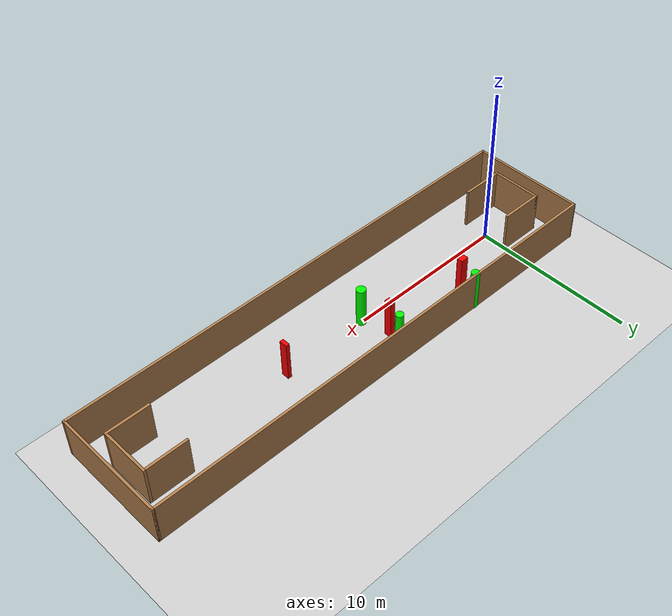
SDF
<sdf version="1.7">
 <world name="default">
  <light name="sun" type="directional">
   <pose>0 0 10 0 -0 0</pose>
   <diffuse>0.8 0.8 0.8 1</diffuse>
   <specular>0.2 0.2 0.2 1</specular>
   <attenuation>
    <range>1000</range>
    <constant>0.9</constant>
    <linear>0.01</linear>
    <quadratic>0.001</quadratic>
   </attenuation>
   <direction>-0.5 0.1 -0.9</direction>
   <spot><inner_angle>0</inner_angle><outer_angle>0</outer_angle><falloff>0</falloff></spot>
  </light>
  <model name="ground_plane">
   <static>1</static>
   <link name="link">
    <collision name="collision">
     <geometry><plane><normal>0 0 1</normal><size>100 100</size></plane></geometry>
     <surface>
      <contact><collide_bitmask>65535</collide_bitmask></contact>
      <friction><ode><mu>100</mu><mu2>50</mu2></ode></friction>
     </surface>
    </collision>
    <visual name="visual">
     <cast_shadows>0</cast_shadows>
     <geometry><plane><normal>0 0 1</normal><size>100 100</size></plane></geometry>
     <material>
      <script><uri>file://media/materials/scripts/gazebo.material</uri><name>Gazebo/Grey</name></script>
     </material>
    </visual>
   </link>
  </model>
  <gravity>0 0 -9.8</gravity>
  <magnetic_field>6e-06 2.3e-05 -4.2e-05</magnetic_field>
  <atmosphere type="adiabatic"/>
  <physics type="ode">
   <max_step_size>0.001</max_step_size>
   <real_time_factor>1</real_time_factor>
   <real_time_update_rate>1000</real_time_update_rate>
  </physics>
  <scene><ambient>0.4 0.4 0.4 1</ambient><background>0.7 0.7 0.7 1</background><shadows>1</shadows></scene>
  <spherical_coordinates>
   <surface_model>EARTH_WGS84</surface_model>
   <latitude_deg>0</latitude_deg>
   <longitude_deg>0</longitude_deg>
   <elevation>0</elevation>
   <heading_deg>0</heading_deg>
  </spherical_coordinates>
  <model name="my_base_walls">
   <link name="Wall_0">
    <collision name="Wall_0_Collision">
     <geometry><box><size>7.15 0.15 2.5</size></box></geometry>
     <pose>0 0 1.25 0 -0 0</pose>
    </collision>
    <visual name="Wall_0_Visual">
     <pose>0 0 1.25 0 -0 0</pose>
     <geometry><box><size>7.15 0.15 2.5</size></box></geometry>
     <material>
      <script><uri>file://media/materials/scripts/gazebo.material</uri><name>Gazebo/Wood</name></script>
      <ambient>1 1 1 1</ambient>
     </material>
     <meta><layer>0</layer></meta>
    </visual>
    <pose>-15 0 0 0 -0 1.5708</pose>
   </link>
   <link name="Wall_10">
    <collision name="Wall_10_Collision">
     <geometry><box><size>2.65 0.15 2.5</size></box></geometry>
     <pose>0 0 1.25 0 -0 0</pose>
    </collision>
    <visual name="Wall_10_Visual">
     <pose>0 0 1.25 0 -0 0</pose>
     <geometry><box><size>2.65 0.15 2.5</size></box></geometry>
     <material>
      <script><uri>file://media/materials/scripts/gazebo.material</uri><name>Gazebo/Wood</name></script>
      <ambient>1 1 1 1</ambient>
     </material>
     <meta><layer>0</layer></meta>
    </visual>
    <pose>-12.75 -1.5 0 0 -0 0</pose>
   </link>
   <link name="Wall_12">
    <collision name="Wall_12_Collision">
     <geometry><box><size>2.65 0.15 2.5</size></box></geometry>
     <pose>0 0 1.25 0 -0 0</pose>
    </collision>
    <visual name="Wall_12_Visual">
     <pose>0 0 1.25 0 -0 0</pose>
     <geometry><box><size>2.65 0.15 2.5</size></box></geometry>
     <material>
      <script><uri>file://media/materials/scripts/gazebo.material</uri><name>Gazebo/Wood</name></script>
      <ambient>1 1 1 1</ambient>
     </material>
     <meta><layer>0</layer></meta>
    </visual>
    <pose>-12.75 1.5 0 0 -0 0</pose>
   </link>
   <link name="Wall_14">
    <collision name="Wall_14_Collision">
     <geometry><box><size>3.15 0.15 2.5</size></box></geometry>
     <pose>0 0 1.25 0 -0 0</pose>
    </collision>
    <visual name="Wall_14_Visual">
     <pose>0 0 1.25 0 -0 0</pose>
     <geometry><box><size>3.15 0.15 2.5</size></box></geometry>
     <material>
      <script><uri>file://media/materials/scripts/gazebo.material</uri><name>Gazebo/Wood</name></script>
      <ambient>1 1 1 1</ambient>
     </material>
     <meta><layer>0</layer></meta>
    </visual>
    <pose>14 0 0 0 -0 -1.5708</pose>
   </link>
   <link name="Wall_15">
    <collision name="Wall_15_Collision">
     <geometry><box><size>2.65 0.15 2.5</size></box></geometry>
     <pose>0 0 1.25 0 -0 0</pose>
    </collision>
    <visual name="Wall_15_Visual">
     <pose>0 0 1.25 0 -0 0</pose>
     <geometry><box><size>2.65 0.15 2.5</size></box></geometry>
     <material>
      <script><uri>file://media/materials/scripts/gazebo.material</uri><name>Gazebo/Wood</name></script>
      <ambient>1 1 1 1</ambient>
     </material>
     <meta><layer>0</layer></meta>
    </visual>
    <pose>12.75 -1.5 0 0 -0 3.14159</pose>
   </link>
   <link name="Wall_17">
    <collision name="Wall_17_Collision">
     <geometry><box><size>2.65 0.15 2.5</size></box></geometry>
     <pose>0 0 1.25 0 -0 0</pose>
    </collision>
    <visual name="Wall_17_Visual">
     <pose>0 0 1.25 0 -0 0</pose>
     <geometry><box><size>2.65 0.15 2.5</size></box></geometry>
     <material>
      <script><uri>file://media/materials/scripts/gazebo.material</uri><name>Gazebo/Wood</name></script>
      <ambient>1 1 1 1</ambient>
     </material>
     <meta><layer>0</layer></meta>
    </visual>
    <pose>12.75 1.5 0 0 -0 3.14159</pose>
   </link>
   <link name="Wall_2">
    <collision name="Wall_2_Collision">
     <geometry><box><size>30.15 0.15 2.5</size></box></geometry>
     <pose>0 0 1.25 0 -0 0</pose>
    </collision>
    <visual name="Wall_2_Visual">
     <pose>0 0 1.25 0 -0 0</pose>
     <geometry><box><size>30.15 0.15 2.5</size></box></geometry>
     <material>
      <script><uri>file://media/materials/scripts/gazebo.material</uri><name>Gazebo/Wood</name></script>
      <ambient>1 1 1 1</ambient>
     </material>
     <meta><layer>0</layer></meta>
    </visual>
    <pose>-0 -3.5 0 0 -0 0</pose>
   </link>
   <link name="Wall_4">
    <collision name="Wall_4_Collision">
     <geometry><box><size>30.15 0.15 2.5</size></box></geometry>
     <pose>0 0 1.25 0 -0 0</pose>
    </collision>
    <visual name="Wall_4_Visual">
     <pose>0 0 1.25 0 -0 0</pose>
     <geometry><box><size>30.15 0.15 2.5</size></box></geometry>
     <material>
      <script><uri>file://media/materials/scripts/gazebo.material</uri><name>Gazebo/Wood</name></script>
      <ambient>1 1 1 1</ambient>
     </material>
     <meta><layer>0</layer></meta>
    </visual>
    <pose>-0 3.5 0 0 -0 0</pose>
   </link>
   <link name="Wall_6">
    <collision name="Wall_6_Collision">
     <geometry><box><size>7.15 0.15 2.5</size></box></geometry>
     <pose>0 0 1.25 0 -0 0</pose>
    </collision>
    <visual name="Wall_6_Visual">
     <pose>0 0 1.25 0 -0 0</pose>
     <geometry><box><size>7.15 0.15 2.5</size></box></geometry>
     <material>
      <script><uri>file://media/materials/scripts/gazebo.material</uri><name>Gazebo/Wood</name></script>
      <ambient>1 1 1 1</ambient>
     </material>
     <meta><layer>0</layer></meta>
    </visual>
    <pose>15 0 0 0 -0 -1.5708</pose>
   </link>
   <link name="Wall_9">
    <collision name="Wall_9_Collision">
     <geometry><box><size>3.15 0.15 2.5</size></box></geometry>
     <pose>0 0 1.25 0 -0 0</pose>
    </collision>
    <visual name="Wall_9_Visual">
     <pose>0 0 1.25 0 -0 0</pose>
     <geometry><box><size>3.15 0.15 2.5</size></box></geometry>
     <material>
      <script><uri>file://media/materials/scripts/gazebo.material</uri><name>Gazebo/Wood</name></script>
      <ambient>1 1 1 1</ambient>
     </material>
     <meta><layer>0</layer></meta>
    </visual>
    <pose>-14 0 0 0 -0 -1.5708</pose>
   </link>
   <static>1</static>
   <pose>11.5 0 0 0 -0 0</pose>
  </model>
  <model name="cylinder1">
   <static>1</static>
   <link name="link">
    <inertial>
     <mass>1</mass>
     <inertia><ixx>0.5</ixx><ixy>0</ixy><ixz>0</ixz><iyy>0.5</iyy><iyz>0</iyz><izz>1</izz></inertia>
    </inertial>
    <collision name="collision">
     <geometry><cylinder><radius>0.28802805428003386</radius><length>2.5</length></cylinder></geometry>
    </collision>
    <visual name="visual">
     <geometry><cylinder><radius>0.28802805428003386</radius><length>2.5</length></cylinder></geometry>
     <material>
      <ambient>0 1 0 1</ambient>
      <diffuse>0 1 0 1</diffuse>
      <specular>0.1 0.1 0.1 1</specular>
      <emissive>0 0 0 0</emissive>
     </material>
    </visual>
   </link>
   <pose>10.149533507509318 -0.036395445348424094 1.25 0 0 0</pose>
  </model>
  <model name="cylinder2">
   <static>1</static>
   <link name="link">
    <inertial>
     <mass>1</mass>
     <inertia><ixx>0.5</ixx><ixy>0</ixy><ixz>0</ixz><iyy>0.5</iyy><iyz>0</iyz><izz>1</izz></inertia>
    </inertial>
    <collision name="collision">
     <geometry><cylinder><radius>0.25215252132489563</radius><length>2.5</length></cylinder></geometry>
    </collision>
    <visual name="visual">
     <geometry><cylinder><radius>0.25215252132489563</radius><length>2.5</length></cylinder></geometry>
     <material>
      <ambient>0 1 0 1</ambient>
      <diffuse>0 1 0 1</diffuse>
      <specular>0.1 0.1 0.1 1</specular>
      <emissive>0 0 0 0</emissive>
     </material>
    </visual>
   </link>
   <pose>4.80697228145225 3.3673655285481585 1.25 0 0 0</pose>
  </model>
  <model name="cylinder3">
   <static>1</static>
   <link name="link">
    <inertial>
     <mass>1</mass>
     <inertia><ixx>0.5</ixx><ixy>0</ixy><ixz>0</ixz><iyy>0.5</iyy><iyz>0</iyz><izz>1</izz></inertia>
    </inertial>
    <collision name="collision">
     <geometry><cylinder><radius>0.23209141136937692</radius><length>2.5</length></cylinder></geometry>
    </collision>
    <visual name="visual">
     <geometry><cylinder><radius>0.23209141136937692</radius><length>2.5</length></cylinder></geometry>
     <material>
      <ambient>0 1 0 1</ambient>
      <diffuse>0 1 0 1</diffuse>
      <specular>0.1 0.1 0.1 1</specular>
      <emissive>0 0 0 0</emissive>
     </material>
    </visual>
   </link>
   <pose>9.99180779754152 2.7137308202431587 1.25 0 0 0</pose>
  </model>
  <model name="box1">
   <static>1</static>
   <link name="link">
    <inertial>
     <mass>1</mass>
     <inertia><ixx>0.083</ixx><ixy>0</ixy><ixz>0</ixz><iyy>0.083</iyy><iyz>0</iyz><izz>0.083</izz></inertia>
    </inertial>
    <collision name="collision">
     <geometry><box><size>0.2334288605270528 0.47946419636711013 2.5</size></box></geometry>
    </collision>
    <visual name="visual">
     <geometry><box><size>0.2334288605270528 0.47946419636711013 2.5</size></box></geometry>
     <material>
      <ambient>1 0 0 1</ambient>
      <diffuse>1 0 0 1</diffuse>
      <specular>0.1 0.1 0.1 1</specular>
      <emissive>0 0 0 0</emissive>
     </material>
    </visual>
    <sensor name="my_contact" type="contact">
     <contact><collision>box_collision</collision><topic>__default_topic__</topic></contact>
    </sensor>
   </link>
   <pose>15.618940816083317 0.027930783694163352 1.25 0 0 0</pose>
  </model>
  <model name="box2">
   <static>1</static>
   <link name="link">
    <inertial>
     <mass>1</mass>
     <inertia><ixx>0.083</ixx><ixy>0</ixy><ixz>0</ixz><iyy>0.083</iyy><iyz>0</iyz><izz>0.083</izz></inertia>
    </inertial>
    <collision name="collision">
     <geometry><box><size>0.31895750896744285 0.45145055398294387 2.5</size></box></geometry>
    </collision>
    <visual name="visual">
     <geometry><box><size>0.31895750896744285 0.45145055398294387 2.5</size></box></geometry>
     <material>
      <ambient>1 0 0 1</ambient>
      <diffuse>1 0 0 1</diffuse>
      <specular>0.1 0.1 0.1 1</specular>
      <emissive>0 0 0 0</emissive>
     </material>
    </visual>
    <sensor name="my_contact" type="contact">
     <contact><collision>box_collision</collision><topic>__default_topic__</topic></contact>
    </sensor>
   </link>
   <pose>9.679208508369022 1.6733234276729707 1.25 0 0 0</pose>
  </model>
  <model name="box3">
   <static>1</static>
   <link name="link">
    <inertial>
     <mass>1</mass>
     <inertia><ixx>0.083</ixx><ixy>0</ixy><ixz>0</ixz><iyy>0.083</iyy><iyz>0</iyz><izz>0.083</izz></inertia>
    </inertial>
    <collision name="collision">
     <geometry><box><size>0.48534933913931644 0.36355912333229795 2.5</size></box></geometry>
    </collision>
    <visual name="visual">
     <geometry><box><size>0.48534933913931644 0.36355912333229795 2.5</size></box></geometry>
     <material>
      <ambient>1 0 0 1</ambient>
      <diffuse>1 0 0 1</diffuse>
      <specular>0.1 0.1 0.1 1</specular>
      <emissive>0 0 0 0</emissive>
     </material>
    </visual>
    <sensor name="my_contact" type="contact">
     <contact><collision>box_collision</collision><topic>__default_topic__</topic></contact>
    </sensor>
   </link>
   <pose>4.469233476364545 2.103517475467056 1.25 0 0 0</pose>
  </model>
 </world>
</sdf>
